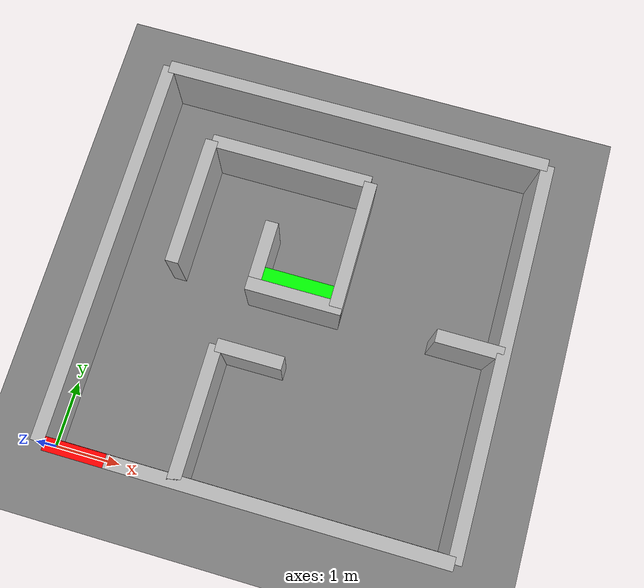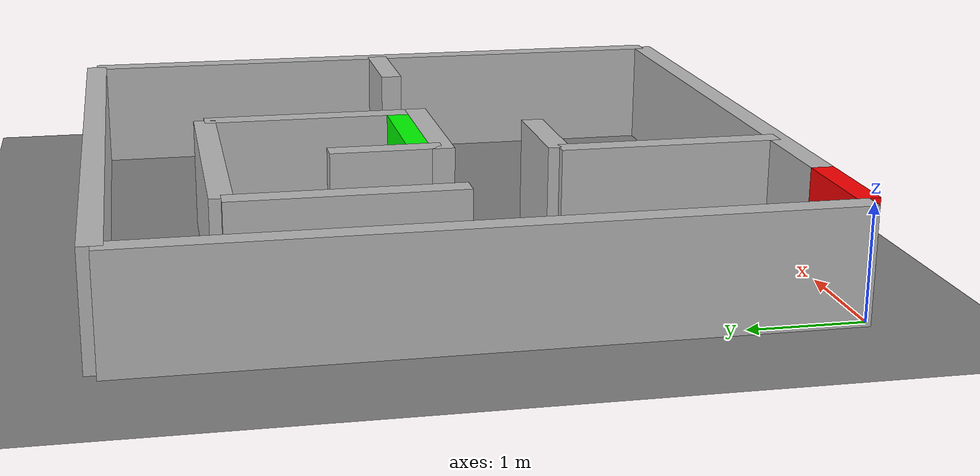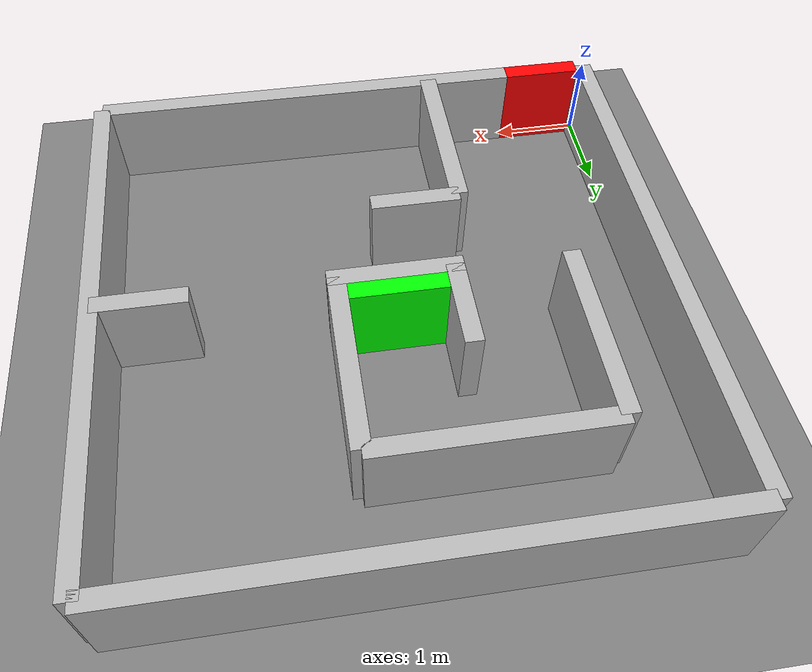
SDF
<?xml version="1.0"?>
<sdf version="1.8">
  <world name="island_maze">

    <!-- ================== Gazebo Core Systems ================== -->
    <plugin filename="gz-sim-physics-system" name="gz::sim::systems::Physics"/>
    <plugin filename="gz-sim-user-commands-system" name="gz::sim::systems::UserCommands"/>
    <plugin filename="gz-sim-scene-broadcaster-system" name="gz::sim::systems::SceneBroadcaster"/>
    <plugin filename="gz-sim-sensors-system" name="gz::sim::systems::Sensors">
      <render_engine>ogre2</render_engine>
    </plugin>
    <plugin filename="gz-sim-imu-system" name="gz::sim::systems::Imu"/>

    <!-- ================== Ground Plane ================== -->
    <model name="ground">
      <static>true</static>
      <link name="ground_link">
        <collision name="ground_collision">
          <geometry>
            <plane>
              <normal>0 0 1</normal>
              <size>20 20</size>
            </plane>
          </geometry>
        </collision>
        <visual name="ground_visual">
          <geometry>
            <plane>
              <normal>0 0 1</normal>
              <size>20 20</size>
            </plane>
          </geometry>
          <material>
            <ambient>0.5 0.5 0.5 1</ambient>
            <diffuse>0.5 0.5 0.5 1</diffuse>
          </material>
        </visual>
      </link>
    </model>

    <!-- ================== Sun Light ================== -->
    <light name="sun" type="directional">
      <cast_shadows>true</cast_shadows>
      <pose>0 0 10 0 -0 0</pose>
      <diffuse>0.8 0.8 0.8 1</diffuse>
      <specular>0.1 0.1 0.1 1</specular>
      <direction>-0.5 0.5 -1</direction>
    </light>

    <!-- Outer walls (maze boundary). Size chosen for 10x10 maze.  -->

    <!-- ================== North Wall ================== -->
    <model name="outer_north">
      <pose>3 6 0.5 0 0 0</pose>
      <static>true</static>
      <link name="link">
        <collision name="collision">
          <geometry><box><size>6 0.2 1</size></box></geometry>
        </collision>
        <visual name="visual">
          <geometry><box><size>6 0.2 1</size></box></geometry>
        </visual>
      </link>
    </model>

    <!-- ================== South Wall ================== -->
    <model name="outer_south">
      <pose>3.5 0 0.5 0 0 0</pose>
      <static>true</static>
      <link name="link">
        <collision name="collision">
          <geometry><box><size>5 0.2 1</size></box></geometry>
        </collision>
        <visual name="visual">
          <geometry><box><size>5 0.2 1</size></box></geometry>
        </visual>
      </link>
    </model>

    <!-- ================== East Wall ================== -->
    <model name="outer_east">
      <pose>6 3 0.5 0 0 1.5708</pose> <!-- rotate 90° -->
      <static>true</static>
      <link name="link">
        <collision name="collision">
          <geometry><box><size>6 0.2 1</size></box></geometry>
        </collision>
        <visual name="visual">
          <geometry><box><size>6 0.2 1</size></box></geometry>
        </visual>
      </link>
    </model>

    <!-- ================== West Wall ================== -->
    <model name="outer_west">
      <pose>0 3 0.5 0 0 1.5708</pose> <!-- rotate 90° -->
      <static>true</static>
      <link name="link">
        <collision name="collision">
          <geometry><box><size>6 0.2 1</size></box></geometry>
        </collision>
        <visual name="visual">
          <geometry><box><size>6 0.2 1</size></box></geometry>
        </visual>
      </link>
    </model>

    <!-- Coloured walls (start/finish)                             -->

   <!-- ================== Start Wall (Red) ================== -->
    <model name="start_wall">
      <pose>0.55 0 0.5 0 0 0</pose>
      <static>true</static>
      <link name="link">
        <collision name="collision">
          <geometry><box><size>0.9 0.2 1</size></box></geometry>
        </collision>
        <visual name="visual">
          <geometry><box><size>0.9 0.2 1</size></box></geometry>
          <material>
            <ambient>1 0 0 1</ambient>     <!-- red -->
            <diffuse>1 0 0 1</diffuse>
          </material>
        </visual>
      </link>
    </model>

    <!-- ================== End Wall (Green) ================== -->
    <model name="end_wall">
      <pose>2.875 3.2 0.5 0 0 0</pose>
      <static>true</static>
      <link name="link">
        <collision name="collision">
          <geometry><box><size>1.05 0.2 1</size></box></geometry>
        </collision>
        <visual name="visual">
          <geometry><box><size>1.05 0.2 1</size></box></geometry>
          <material>
            <ambient>0 1 0 1</ambient>     <!-- green -->
            <diffuse>0 1 0 1</diffuse>
          </material>
        </visual>
      </link>
    </model>

    <!-- Inner maze walls (all connected to boundary).             -->

    <!-- ================== Inner Wall 1 ================== -->
    <model name="inner_wall1">
      <pose>2 1 0.5 0 0 1.5708</pose> <!-- rotate 90° -->
      <static>true</static>
      <link name="link">
        <collision name="collision">
          <geometry><box><size>2 0.2 1</size></box></geometry>
        </collision>
        <visual name="visual">
          <geometry><box><size>2 0.2 1</size></box></geometry>
        </visual>
      </link>
    </model>

    <!-- ================== Inner Wall 2 ================== -->
    <model name="inner_wall2">
      <pose>2.5 2 0.5 0 0 0</pose>
      <static>true</static>
      <link name="link">
        <collision name="collision">
          <geometry><box><size>1 0.2 1</size></box></geometry>
        </collision>
        <visual name="visual">
          <geometry><box><size>1 0.2 1</size></box></geometry>
        </visual>
      </link>
    </model>

    <!-- ================== Inner Wall 3 ================== -->
    <model name="inner_wall3">
      <pose>5.5 3 0.5 0 0 0</pose> <!-- rotate 90° -->
      <static>true</static>
      <link name="link">
        <collision name="collision">
          <geometry><box><size>1 0.2 1</size></box></geometry>
        </collision>
        <visual name="visual">
          <geometry><box><size>1 0.2 1</size></box></geometry>
        </visual>
      </link>
    </model>

    <!-- ================== Inner Wall 4 ================== -->
    <model name="inner_wall4">
      <pose>1 4 0.5 0 0 1.5708</pose> <!-- rotate 90° -->
      <static>true</static>
      <link name="link">
        <collision name="collision">
          <geometry><box><size>2 0.2 1</size></box></geometry>
        </collision>
        <visual name="visual">
          <geometry><box><size>2 0.2 1</size></box></geometry>
        </visual>
      </link>
    </model>

    <!-- ================== Inner Wall 5 ================== -->
    <model name="inner_wall5">
      <pose>2.25 5 0.5 0 0 0</pose>
      <static>true</static>
      <link name="link">
        <collision name="collision">
          <geometry><box><size>2.5 0.2 1</size></box></geometry>
        </collision>
        <visual name="visual">
          <geometry><box><size>2.5 0.2 1</size></box></geometry>
        </visual>
      </link>
    </model>

    <!-- ================== Inner Wall 6 ================== -->
    <model name="inner_wall6">
      <pose>3.5 4 0.5 0 0 1.5708</pose> <!-- rotate 90° -->
      <static>true</static>
      <link name="link">
        <collision name="collision">
          <geometry><box><size>2 0.2 1</size></box></geometry>
        </collision>
        <visual name="visual">
          <geometry><box><size>2 0.2 1</size></box></geometry>
        </visual>
      </link>
    </model>

    <!-- ================== Inner Wall 7 ================== -->
    <model name="inner_wall7">
      <pose>2.25 3.5 0.5 0 0 1.5708</pose>
      <static>true</static>
      <link name="link">
        <collision name="collision">
          <geometry><box><size>1 0.2 1</size></box></geometry>
        </collision>
        <visual name="visual">
          <geometry><box><size>1 0.2 1</size></box></geometry>
        </visual>
      </link>
    </model>

    <!-- ================== Inner Wall 8 ================== -->
    <model name="inner_wall8">
      <pose>2.875 3 0.5 0 0 0</pose>
      <static>true</static>
      <link name="link">
        <collision name="collision">
          <geometry><box><size>1.45 0.2 1</size></box></geometry>
        </collision>
        <visual name="visual">
          <geometry><box><size>1.45 0.2 1</size></box></geometry>
        </visual>
      </link>
    </model>

  </world>
</sdf>
